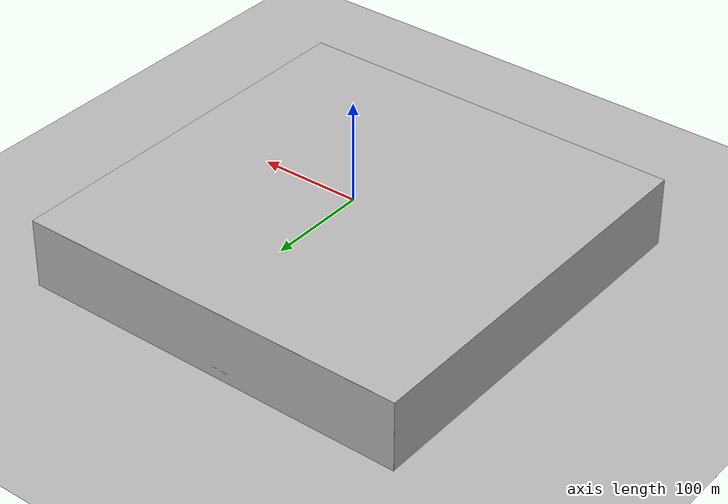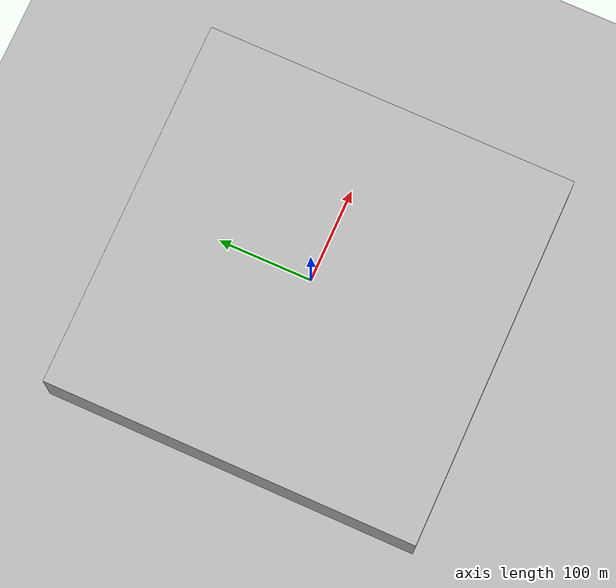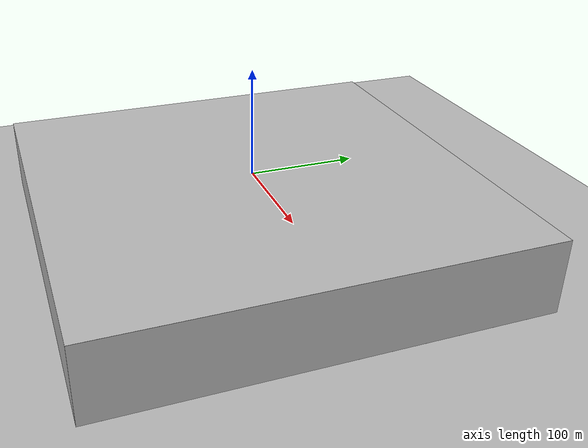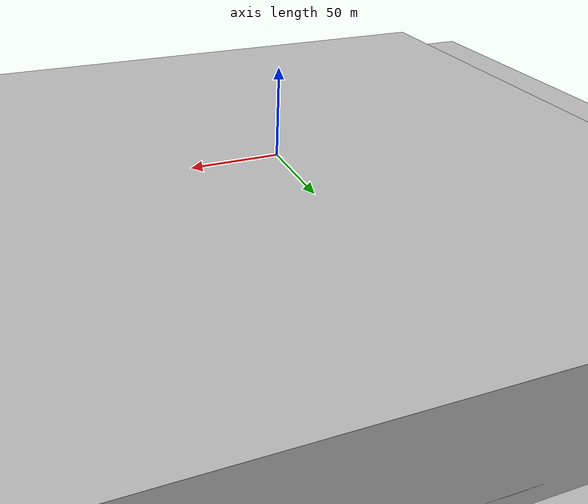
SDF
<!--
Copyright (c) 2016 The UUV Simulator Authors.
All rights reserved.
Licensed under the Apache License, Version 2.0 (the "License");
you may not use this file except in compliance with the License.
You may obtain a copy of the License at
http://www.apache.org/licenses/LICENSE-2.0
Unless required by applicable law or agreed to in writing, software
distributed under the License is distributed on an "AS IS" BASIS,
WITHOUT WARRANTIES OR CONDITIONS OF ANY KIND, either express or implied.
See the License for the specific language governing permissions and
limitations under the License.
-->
<?xml version="1.0" ?>
<sdf version="1.4">
  <world name="default">
    <physics name="default_physics" default="true" type="ode">
      <max_step_size>0.01</max_step_size>
      <real_time_factor>1</real_time_factor>
      <real_time_update_rate>100</real_time_update_rate>
      <ode>
        <solver>
          <type>quick</type>
          <iters>50</iters>
          <sor>1.2</sor>
        </solver>
      </ode>
    </physics>
    <scene>
      <ambient>0.01 0.01 0.01 1.0</ambient>
      <sky>
        <clouds>
          <speed>12</speed>
        </clouds>
      </sky>
      <shadows>1</shadows>
    </scene>

    <!--
      Origin close to the Trondheim Biological Station, in Trondheim, Norway
    -->
    <spherical_coordinates>
      <latitude_deg>63.435952</latitude_deg>
      <longitude_deg>10.357983</longitude_deg>
    </spherical_coordinates>

    <!-- Global light source -->
    <light type="directional" name="sun1">
      <pose>50 0 150 0 0 0</pose>
      <diffuse>1 1 1 1</diffuse>
      <specular>.1 .1 .1 1</specular>
      <direction>0.3 0.3 -1</direction>
      <cast_shadows>false</cast_shadows>
    </light>

    <!-- Global light source -->
    <light type="directional" name="sun_diffuse">
      <pose>-50 0 -150 0 0 0</pose>
      <diffuse>0.6 0.6 0.6 1</diffuse>
      <specular>0 0 0 1</specular>
      <direction>-0.3 -0.3 -1</direction>
      <cast_shadows>false</cast_shadows>
    </light>

    <!-- Bounding box with sea surface -->
    <include>
      <uri>model://sea_bottom</uri>
      <pose>0 0 -80 0 0 0</pose>
    </include>

    <include>
      <uri>model://sea_surface</uri>
      <pose>0 0 0 0 0 0</pose>
    </include>

    <include>
      <uri>model://herkules_seabed</uri>
      <pose>0 0 0 0 0 0</pose>
    </include>

    <plugin name="underwater_current_plugin" filename="libuuv_underwater_current_ros_plugin.so">
      <namespace>hydrodynamics</namespace>
      <constant_current>
        <topic>current_velocity</topic>
        <velocity>
          <mean>0</mean>
          <min>0</min>
          <max>5</max>
          <mu>0.0</mu>
          <noiseAmp>0.0</noiseAmp>
        </velocity>

        <horizontal_angle>
          <mean>0</mean>
          <min>-3.141592653589793238</min>
          <max>3.141592653589793238</max>
          <mu>0.0</mu>
          <noiseAmp>0.0</noiseAmp>
        </horizontal_angle>

        <vertical_angle>
          <mean>0</mean>
          <min>-3.141592653589793238</min>
          <max>3.141592653589793238</max>
          <mu>0.0</mu>
          <noiseAmp>0.0</noiseAmp>
        </vertical_angle>
      </constant_current>
    </plugin>

    <plugin name="sc_interface" filename="libuuv_sc_ros_interface_plugin.so"/>

    <gui fullscreen='0'>
      <camera name='user_camera'>
        <pose frame=''>34.6042 32.2383 -20.6633 0 0.528384 1.41245</pose>
        <view_controller>orbit</view_controller>
        <projection_type>perspective</projection_type>
      </camera>
    </gui>
  </world>
</sdf>

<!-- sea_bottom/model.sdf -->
<sdf version="1.5">
  <model name="sea_bottom">
    <static>true</static>
    <link name="sea_bottom">
      <collision name="collision">
        <pose>0 0 0 0 0 0</pose>
        <geometry>
          <box>
            <size>2000 2000 .1</size>
          </box>
        </geometry>
      </collision>

      <visual name="visual">
        <cast_shadows>false</cast_shadows>
        <pose>0 0 0 0 0 0</pose>
        <geometry>
          <box>
            <size>2000 2000 .1</size>
          </box>
        </geometry>
        <material>
          <script>
            <uri>file://Media/materials/scripts/sand.material</uri>
            <name>UUVSimulator/SandAndStones</name>
          </script>
          <emissive>
            0.2 0.2 0.2 1.0
          </emissive>
        </material>
      </visual>
    </link>
  </model>
</sdf>

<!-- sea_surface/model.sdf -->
<sdf version="1.5">
  <model name="sea_surface">
    <static>true</static>
    <link name="sea_bottom">
      <visual name="ocean_surface">
        <pose>25 12.5 0 0 0 0</pose>
        <cast_shadows>false</cast_shadows>
        <geometry>
          <mesh>
            <uri>file://Media/models/sea_surface_1000m_x_1000m.dae</uri>
            <scale>0.052 0.025 0.07</scale>
          </mesh>
        </geometry>
        <material>
          <script>
            <uri>file://Media/materials/scripts/waves.material</uri>
            <name>UUVSimulator/SimpleWaves</name>
          </script>
        </material>
      </visual>

      <visual name="ocean_below">
        <pose>25 12.5 0 3.14 0 0</pose>
        <cast_shadows>false</cast_shadows>
        <geometry>
          <mesh>
            <uri>file://Media/models/sea_surface_1000m_x_1000m.dae</uri>
            <scale>0.052 0.025 0.07</scale>
          </mesh>
        </geometry>
        <material>
          <script>
            <uri>file://Media/materials/scripts/water.material</uri>
            <name>UUVSimulator/StaticWater</name>
          </script>
        </material>
      </visual>
    </link>
  </model>
</sdf>

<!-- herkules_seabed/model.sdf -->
<sdf version="1.5">
  <model name="herkules_seabed">
    <static>true</static>
    <link name="seabed">
      <collision name="seabed">
        <pose>0 0 -60 0 0 0</pose>
        <geometry>
          <mesh>
            <uri>model://herkules_seabed/meshes/herkules_seabed.dae</uri>
            <scale>4.0 4.0 1.0</scale>
          </mesh>
        </geometry>
      </collision>

      <visual name="seabed">
        <cast_shadows>true</cast_shadows>
        <pose>0 0 -60 0 0 0</pose>
        <geometry>
          <mesh>
            <uri>model://herkules_seabed/meshes/herkules_seabed.dae</uri>
            <scale>4.0 4.0 1.0</scale>
          </mesh>
        </geometry>
        <material>
          <script>
            <uri>file://Media/materials/scripts/sand.material</uri>
            <name>UUVSimulator/SandAndStones</name>
          </script>
        </material>
      </visual>
    </link>

    <link name="ocean_link">
      <visual name="surface">
        <pose>0 0 0 0 0 0</pose>
        <cast_shadows>false</cast_shadows>
        <geometry>
          <box>
            <size>400 400 0.1</size>
          </box>
        </geometry>
        <material>
          <script>
            <uri>file://Media/materials/scripts/water.material</uri>
            <name>UUVSimulator/StaticWater</name>
          </script>
        </material>
      </visual>

      <visual name="bottom">
        <pose>0 0 -70.0 0 0 0</pose>
        <geometry>
          <box>
            <size>400 400 0.1</size>
          </box>
        </geometry>
        <material>
          <script>
            <uri>file://Media/materials/scripts/water.material</uri>
            <name>UUVSimulator/SeaWall</name>
          </script>
        </material>
      </visual>

      <visual name="north_wall">
        <pose>0 200 -35.0 0 0 0</pose>
        <geometry>
          <box>
            <size>400 0.1 70</size>
          </box>
        </geometry>
        <material>
          <script>
            <uri>file://Media/materials/scripts/water.material</uri>
            <name>UUVSimulator/SeaWall</name>
          </script>
        </material>
      </visual>

      <visual name="south_wall">
        <pose>0 -200 -35.0 0 0 0</pose>
        <geometry>
          <box>
            <size>400 0.1 70</size>
          </box>
        </geometry>
        <material>
          <script>
            <uri>file://Media/materials/scripts/water.material</uri>
            <name>UUVSimulator/SeaWall</name>
          </script>
        </material>
      </visual>

      <visual name="east_wall">
        <pose>200 0 -35.0 0 0 0</pose>
        <geometry>
          <box>
            <size>0.1 400 70</size>
          </box>
        </geometry>
        <material>
          <script>
            <uri>file://Media/materials/scripts/water.material</uri>
            <name>UUVSimulator/SeaWall</name>
          </script>
        </material>
      </visual>

      <visual name="west_wall">
        <pose>-200 0 -35.0 0 0 0</pose>
        <geometry>
          <box>
            <size>0.1 400 70</size>
          </box>
        </geometry>
        <material>
          <script>
            <uri>file://Media/materials/scripts/water.material</uri>
            <name>UUVSimulator/SeaWall</name>
          </script>
        </material>
      </visual>
    </link>
  </model>
</sdf>
